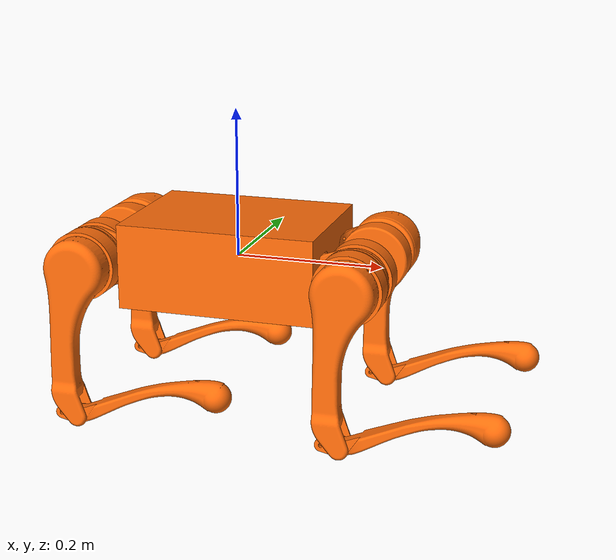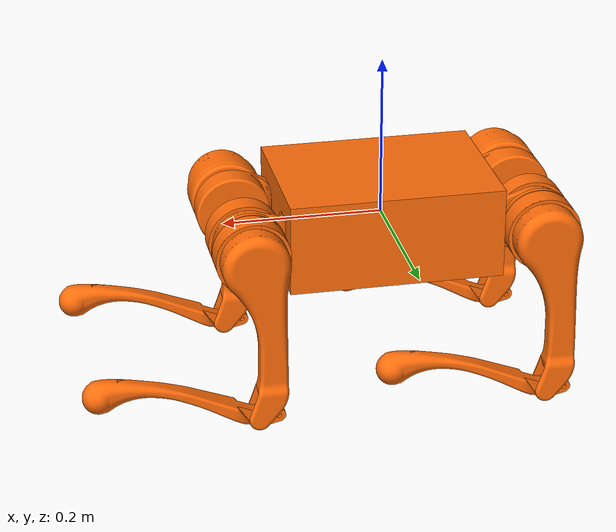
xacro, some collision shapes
<?xml version="1.0"?>

<robot name="a1" xmlns:xacro="http://www.ros.org/wiki/xacro">

    <xacro:arg name="DEBUG" default="false"/>

    <xacro:include filename="$(find a1_description)/xacro/const.xacro"/>
    <xacro:include filename="$(find a1_description)/xacro/materials.xacro"/>
    <xacro:include filename="$(find a1_description)/xacro/leg.xacro"/>
    <xacro:include filename="$(find a1_description)/xacro/stairs.xacro"/>
    <xacro:include filename="$(find a1_description)/xacro/gazebo.xacro"/>

    <!-- Rollover Protection mode will add an additional stick on the top, use "true" or "false" to switch it. -->
    <xacro:property name="rolloverProtection" value="false"/>

    <!-- Debug mode will hung up the robot, use "true" or "false" to switch it. -->
    <xacro:if value="$(arg DEBUG)">
        <link name="world"/>
        <joint name="base_static_joint" type="fixed">
            <origin rpy="0 0 0" xyz="0 0 0"/>
            <parent link="world"/>
            <child link="base"/>
        </joint>
    </xacro:if>

    <link name="base">
        <visual>
            <origin rpy="0 0 0" xyz="0 0 0"/>
            <geometry>
                <box size="0.001 0.001 0.001"/>
            </geometry>
        </visual>
    </link>

    <joint name="floating_base" type="fixed">
        <origin rpy="0 0 0" xyz="0 0 0"/>
        <parent link="base"/>
        <child link="trunk"/>
    </joint>

    <link name="trunk">
        <visual>
            <origin rpy="0 0 0" xyz="0 0 0"/>
            <geometry>
                <mesh filename="package://a1_description/meshes/trunk.dae" scale="1 1 1"/>
            </geometry>
            <material name="orange"/>
        </visual>
        <collision>
            <origin rpy="0 0 0" xyz="0 0 0"/>
            <geometry>
                <box size="${trunk_length} ${trunk_width} ${trunk_height}"/>
            </geometry>
        </collision>
        <inertial>
            <origin rpy="0 0 0" xyz="${trunk_com_x} ${trunk_com_y} ${trunk_com_z}"/>
            <mass value="${trunk_mass}"/>
            <inertia
                ixx="${trunk_ixx}" ixy="${trunk_ixy}" ixz="${trunk_ixz}"
                iyy="${trunk_iyy}" iyz="${trunk_iyz}"
                izz="${trunk_izz}"/>
        </inertial>
    </link>

    <xacro:if value="${(rolloverProtection == 'true')}">
        <joint name="stick_joint" type="fixed">
            <parent link="trunk"/>
            <child link="stick_link"/>
            <origin rpy="0 0 0" xyz="${0.18} 0 ${stick_length/2.0+0.08}"/>
        </joint>

        <link name="stick_link">
            <visual>
                <geometry>
                    <cylinder length="${stick_length}" radius="${stick_radius}"/>
                </geometry>
                <origin rpy="0 0 0" xyz="0 0 0"/>
                <material name="white"/>
            </visual>
            <collision>
                <geometry>
                    <cylinder length="${stick_length}" radius="${stick_radius}"/>
                </geometry>
                <origin rpy="0 0 0" xyz="0 0 0"/>
            </collision>
            <inertial>
                <mass value="${stick_mass}"/>
                <inertia
                    ixx="${stick_mass / 2.0 * (stick_radius*stick_radius)}" ixy="0.0" ixz="0.0"
                    iyy="${stick_mass / 12.0 * (3*stick_radius*stick_radius + stick_length*stick_length)}" iyz="0.0"
                    izz="${stick_mass / 12.0 * (3*stick_radius*stick_radius + stick_length*stick_length)}"/>
            </inertial>
        </link>
    </xacro:if>

    <joint name="imu_joint" type="fixed">
        <parent link="trunk"/>
        <child link="imu_link"/>
        <origin rpy="0 0 0" xyz="0 0 0"/>
    </joint>

    <link name="imu_link">
        <inertial>
            <mass value="0.001"/>
            <origin rpy="0 0 0" xyz="0 0 0"/>
            <inertia ixx="0.0001" ixy="0" ixz="0" iyy="0.0001" iyz="0" izz="0.0001"/>
        </inertial>
        <visual>
            <origin rpy="0 0 0" xyz="0 0 0"/>
            <geometry>
                <box size="0.001 0.001 0.001"/>
            </geometry>
            <material name="red"/>
        </visual>
        <collision>
            <origin rpy="0 0 0" xyz="0 0 0"/>
            <geometry>
                <box size=".001 .001 .001"/>
            </geometry>
        </collision>
    </link>

    <xacro:leg name="FR" mirror="-1" mirror_dae="False" front_hind="1" front_hind_dae="True">
        <origin rpy="0 0 0" xyz="${leg_offset_x} ${-leg_offset_y} 0"/>
    </xacro:leg>

    <xacro:leg name="FL" mirror="1" mirror_dae="True" front_hind="1" front_hind_dae="True">
        <origin rpy="0 0 0" xyz="${leg_offset_x} ${leg_offset_y} 0"/>
    </xacro:leg>

    <xacro:leg name="RR" mirror="-1" mirror_dae="False" front_hind="-1" front_hind_dae="False">
        <origin rpy="0 0 0" xyz="${-leg_offset_x} ${-leg_offset_y} 0"/>
    </xacro:leg>

    <xacro:leg name="RL" mirror="1" mirror_dae="True" front_hind="-1" front_hind_dae="False">
        <origin rpy="0 0 0" xyz="${-leg_offset_x} ${leg_offset_y} 0"/>
    </xacro:leg>

</robot>

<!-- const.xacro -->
<robot xmlns:xacro="http://www.ros.org/wiki/xacro">

    <!-- Constants for robot dimensions -->
    <xacro:property name="PI" value="3.1415926535897931"/>
    <xacro:property name="stick_mass" value="0.00001"/>

    <!-- simplified collision value -->
    <xacro:property name="trunk_width" value="0.194"/>
    <xacro:property name="trunk_length" value="0.267"/>
    <xacro:property name="trunk_height" value="0.114"/>
    <xacro:property name="hip_radius" value="0.046"/>
    <xacro:property name="hip_length" value="0.04"/>
    <xacro:property name="thigh_shoulder_radius" value="0.041"/>
    <xacro:property name="thigh_shoulder_length" value="0.032"/>
    <xacro:property name="thigh_width" value="0.0245"/>
    <xacro:property name="thigh_height" value="0.034"/>
    <xacro:property name="calf_width" value="0.016"/>
    <xacro:property name="calf_height" value="0.016"/>
    <xacro:property name="foot_radius" value="0.02"/>
    <xacro:property name="stick_radius" value="0.01"/>
    <xacro:property name="stick_length" value="0.2"/>

    <!-- kinematic value -->
    <xacro:property name="thigh_offset" value="0.0838"/>
    <xacro:property name="thigh_length" value="0.2"/>
    <xacro:property name="calf_length" value="0.2"/>

    <!-- leg offset from trunk center value -->
    <xacro:property name="leg_offset_x" value="0.1805"/>
    <xacro:property name="leg_offset_y" value="0.047"/>
    <xacro:property name="trunk_offset_z" value="0.01675"/>
    <xacro:property name="hip_offset" value="0.065"/>

    <!-- joint limits -->
    <xacro:property name="damping" value="0"/>
    <xacro:property name="friction" value="0"/>
    <xacro:property name="hip_max" value="46"/>
    <xacro:property name="hip_min" value="-46"/>
    <xacro:property name="hip_velocity_max" value="21"/>
    <xacro:property name="hip_torque_max" value="33.5"/>
    <xacro:property name="thigh_max" value="240"/>
    <xacro:property name="thigh_min" value="-60"/>
    <xacro:property name="thigh_velocity_max" value="21"/>
    <xacro:property name="thigh_torque_max" value="33.5"/>
    <xacro:property name="calf_max" value="-52.5"/>
    <xacro:property name="calf_min" value="-154.5"/>
    <xacro:property name="calf_velocity_max" value="21"/>
    <xacro:property name="calf_torque_max" value="33.5"/>

    <!-- dynamics inertial value        total 13.9kg -->
    <!-- trunk -->
    <xacro:property name="trunk_mass" value="6.0"/>
    <xacro:property name="trunk_com_x" value="0.0000"/>
    <xacro:property name="trunk_com_y" value="0.0041"/>
    <xacro:property name="trunk_com_z" value="-0.0005"/>
    <xacro:property name="trunk_ixx" value="0.0158533"/>
    <xacro:property name="trunk_ixy" value="-0.0000366"/>
    <xacro:property name="trunk_ixz" value="-0.0000611"/>
    <xacro:property name="trunk_iyy" value="0.0377999"/>
    <xacro:property name="trunk_iyz" value="-0.0000275"/>
    <xacro:property name="trunk_izz" value="0.0456542"/>

    <!-- hip (left front) -->
    <xacro:property name="hip_mass" value="0.595"/>
    <xacro:property name="hip_com_x" value="-0.003875"/>
    <xacro:property name="hip_com_y" value="0.001622"/>
    <xacro:property name="hip_com_z" value="0.000042"/>
    <xacro:property name="hip_ixx" value="0.000402747"/>
    <xacro:property name="hip_ixy" value="-0.000008709"/>
    <xacro:property name="hip_ixz" value="-0.000000297"/>
    <xacro:property name="hip_iyy" value="0.000691123"/>
    <xacro:property name="hip_iyz" value="-0.000000545"/>
    <xacro:property name="hip_izz" value="0.000487919"/>

    <!-- thigh -->
    <xacro:property name="thigh_mass" value="0.888"/>
    <xacro:property name="thigh_com_x" value="-0.003574"/>
    <xacro:property name="thigh_com_y" value="-0.019529"/>
    <xacro:property name="thigh_com_z" value="-0.030323"/>
    <xacro:property name="thigh_ixx" value="0.005251806"/>
    <xacro:property name="thigh_ixy" value="-0.000002168"/>
    <xacro:property name="thigh_ixz" value="0.000346889"/>
    <xacro:property name="thigh_iyy" value="0.005000475"/>
    <xacro:property name="thigh_iyz" value="-0.000028174"/>
    <xacro:property name="thigh_izz" value="0.001110200"/>

    <!-- calf -->
    <xacro:property name="calf_mass" value="0.151"/>
    <xacro:property name="calf_com_x" value="0.007105"/>
    <xacro:property name="calf_com_y" value="-0.000239"/>
    <xacro:property name="calf_com_z" value="-0.096933"/>
    <xacro:property name="calf_ixx" value="0.002344758"/>
    <xacro:property name="calf_ixy" value="0.0"/>
    <xacro:property name="calf_ixz" value="-0.000141275"/>
    <xacro:property name="calf_iyy" value="0.002360755"/>
    <xacro:property name="calf_iyz" value="0.0"/>
    <xacro:property name="calf_izz" value="0.000031158"/>

    <!-- foot -->
    <xacro:property name="foot_mass" value="0.06"/>

</robot>

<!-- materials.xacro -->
<robot>

    <material name="black">
        <color rgba="0.0 0.0 0.0 1.0"/>
    </material>

    <material name="blue">
        <color rgba="0.0 0.0 0.8 1.0"/>
    </material>

    <material name="green">
        <color rgba="0.0 0.8 0.0 1.0"/>
    </material>

    <material name="grey">
        <color rgba="0.2 0.2 0.2 1.0"/>
    </material>

    <material name="silver">
        <color rgba="${233/255} ${233/255} ${216/255} 1.0"/>
    </material>

    <material name="orange">
        <color rgba="${255/255} ${108/255} ${10/255} 1.0"/>
    </material>

    <material name="brown">
        <color rgba="${222/255} ${207/255} ${195/255} 1.0"/>
    </material>

    <material name="red">
        <color rgba="0.8 0.0 0.0 1.0"/>
    </material>

    <material name="white">
        <color rgba="1.0 1.0 1.0 1.0"/>
    </material>

</robot>

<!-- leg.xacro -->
<robot xmlns:xacro="http://www.ros.org/wiki/xacro">

    <xacro:include filename="$(find a1_description)/xacro/transmission.xacro"/>

    <xacro:macro name="leg" params="name mirror mirror_dae front_hind front_hind_dae *origin">

        <joint name="${name}_hip_joint" type="revolute">
            <xacro:insert_block name="origin"/>
            <parent link="trunk"/>
            <child link="${name}_hip"/>
            <axis xyz="1 0 0"/>
            <dynamics damping="${damping}" friction="${friction}"/>
            <xacro:if value="${(mirror_dae == True)}">
                <limit effort="${hip_torque_max}" velocity="${hip_velocity_max}" lower="${hip_min*PI/180.0}" upper="${hip_max*PI/180.0}"/>
            </xacro:if>
            <xacro:if value="${(mirror_dae == False)}">
                <limit effort="${hip_torque_max}" velocity="${hip_velocity_max}" lower="${-hip_max*PI/180.0}" upper="${-hip_min*PI/180.0}"/>
            </xacro:if>
        </joint>

        <link name="${name}_hip">
            <visual>
                <xacro:if value="${(mirror_dae == True) and (front_hind_dae == True)}">
                    <origin rpy="0 0 0" xyz="0 0 0"/>
                </xacro:if>
                <xacro:if value="${(mirror_dae == False) and (front_hind_dae == True)}">
                    <origin rpy="${PI} 0 0" xyz="0 0 0"/>
                </xacro:if>
                <xacro:if value="${(mirror_dae == True) and (front_hind_dae == False)}">
                    <origin rpy="0 ${PI} 0" xyz="0 0 0"/>
                </xacro:if>
                <xacro:if value="${(mirror_dae == False) and (front_hind_dae == False)}">
                    <origin rpy="${PI} ${PI} 0" xyz="0 0 0"/>
                </xacro:if>
                <geometry>
                    <mesh filename="package://a1_description/meshes/hip.dae" scale="1 1 1"/>
                </geometry>
                <material name="orange"/>
            </visual>
            <collision>
                <origin rpy="${PI/2.0} 0 0" xyz="0 0 0"/>
                <geometry>
                    <cylinder length="${hip_length}" radius="${hip_radius}"/>
                </geometry>
            </collision>
            <inertial>
                <origin rpy="0 0 0" xyz="${hip_com_x*front_hind} ${hip_com_y*mirror} ${hip_com_z}"/>
                <mass value="${hip_mass}"/>
                <inertia
                    ixx="${hip_ixx}" ixy="${hip_ixy*mirror*front_hind}" ixz="${hip_ixz*front_hind}"
                    iyy="${hip_iyy}" iyz="${hip_iyz*mirror}"
                    izz="${hip_izz}"/>
            </inertial>
        </link>

        <joint name="${name}_hip_fixed" type="fixed">
            <origin rpy="0 0 0" xyz="0 ${(thigh_shoulder_length/2.0+hip_offset)*mirror} 0"/>
            <parent link="${name}_hip"/>
            <child link="${name}_thigh_shoulder"/>
        </joint>

        <!-- this link is only for collision -->
        <link name="${name}_thigh_shoulder">
            <collision>
                <origin rpy="${PI/2.0} 0 0" xyz="0 0 0"/>
                <geometry>
                    <cylinder length="${thigh_shoulder_length}" radius="${thigh_shoulder_radius}"/>
                </geometry>
            </collision>
        </link>

        <joint name="${name}_thigh_joint" type="revolute">
            <origin rpy="0 0 0" xyz="0 ${thigh_offset*mirror} 0"/>
            <parent link="${name}_hip"/>
            <child link="${name}_thigh"/>
            <axis xyz="0 1 0"/>
            <dynamics damping="${damping}" friction="${friction}"/>
            <limit effort="${thigh_torque_max}" velocity="${thigh_velocity_max}" lower="${thigh_min*PI/180.0}" upper="${thigh_max*PI/180.0}"/>
        </joint>

        <link name="${name}_thigh">
            <visual>
                <origin rpy="0 0 0" xyz="0 0 0"/>
                <geometry>
                    <xacro:if value="${mirror_dae == True}">
                        <mesh filename="package://a1_description/meshes/thigh.dae" scale="1 1 1"/>
                    </xacro:if>
                    <xacro:if value="${mirror_dae == False}">
                        <mesh filename="package://a1_description/meshes/thigh_mirror.dae" scale="1 1 1"/>
                    </xacro:if>
                </geometry>
                <material name="orange"/>
            </visual>
            <collision>
                <origin rpy="0 ${PI/2.0} 0" xyz="0 0 ${-thigh_length/2.0}"/>
                <geometry>
                    <box size="${thigh_length} ${thigh_width} ${thigh_height}"/>
                </geometry>
            </collision>
            <inertial>
                <origin rpy="0 0 0" xyz="${thigh_com_x} ${thigh_com_y*mirror} ${thigh_com_z}"/>
                <mass value="${thigh_mass}"/>
                <inertia
                    ixx="${thigh_ixx}" ixy="${thigh_ixy*mirror}" ixz="${thigh_ixz}"
                    iyy="${thigh_iyy}" iyz="${thigh_iyz*mirror}"
                    izz="${thigh_izz}"/>
            </inertial>
        </link>

        <joint name="${name}_calf_joint" type="revolute">
            <origin rpy="0 0 0" xyz="0 0 ${-thigh_length}"/>
            <parent link="${name}_thigh"/>
            <child link="${name}_calf"/>
            <axis xyz="0 1 0"/>
            <dynamics damping="${damping}" friction="${friction}"/>
            <limit effort="${calf_torque_max}" velocity="${calf_velocity_max}" lower="${calf_min*PI/180.0}" upper="${calf_max*PI/180.0}"/>
        </joint>

        <link name="${name}_calf">
            <visual>
                <origin rpy="0 0 0" xyz="0 0 0"/>
                <geometry>
                    <mesh filename="package://a1_description/meshes/calf.dae" scale="1 1 1"/>
                </geometry>
                <material name="orange"/>
            </visual>
            <collision>
                <origin rpy="0 ${PI/2.0} 0" xyz="0 0 ${-calf_length/2.0}"/>
                <geometry>
                    <box size="${calf_length} ${calf_width} ${calf_height}"/>
                </geometry>
            </collision>
            <inertial>
                <origin rpy="0 0 0" xyz="${calf_com_x} ${calf_com_y} ${calf_com_z}"/>
                <mass value="${calf_mass}"/>
                <inertia
                    ixx="${calf_ixx}" ixy="${calf_ixy}" ixz="${calf_ixz}"
                    iyy="${calf_iyy}" iyz="${calf_iyz}"
                    izz="${calf_izz}"/>
            </inertial>
        </link>

        <joint name="${name}_foot_fixed" type="fixed">
            <origin rpy="0 0 0" xyz="0 0 ${-(calf_length)}"/>
            <parent link="${name}_calf"/>
            <child link="${name}_foot"/>
        </joint>

        <link name="${name}_foot">
            <visual>
                <origin rpy="0 0 0" xyz="0 0 0"/>
                <geometry>
                    <sphere radius="${foot_radius-0.01}"/>
                </geometry>
                <material name="orange"/>
            </visual>
            <collision>
                <origin rpy="0 0 0" xyz="0 0 0"/>
                <geometry>
                    <sphere radius="${foot_radius}"/>
                </geometry>
            </collision>
            <inertial>
                <mass value="${foot_mass}"/>
                <inertia
                    ixx="${(2*foot_mass)/5.0*(foot_radius*foot_radius)}" ixy="0.0" ixz="0.0"
                    iyy="${(2*foot_mass)/5.0*(foot_radius*foot_radius)}" iyz="0.0"
                    izz="${(2*foot_mass)/5.0*(foot_radius*foot_radius)}"/>
            </inertial>
        </link>

        <xacro:leg_transmission name="${name}"/>
    </xacro:macro>
</robot>
